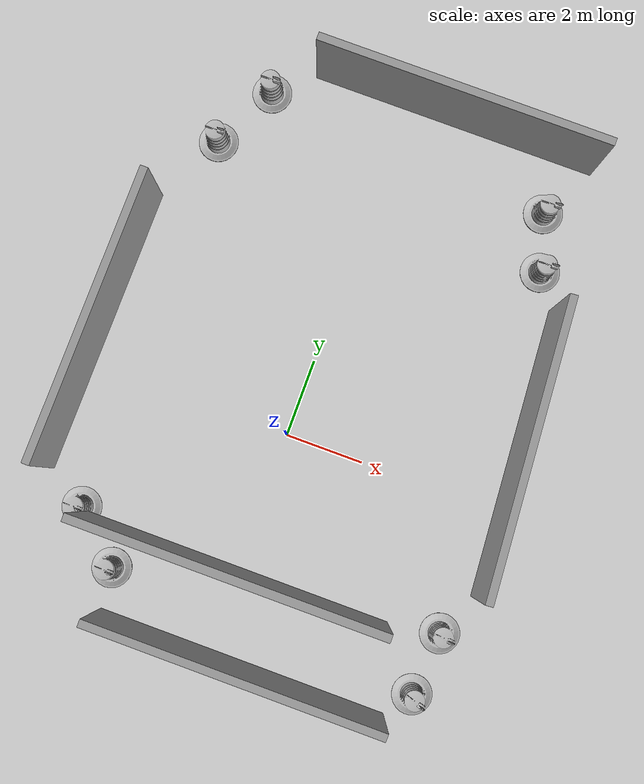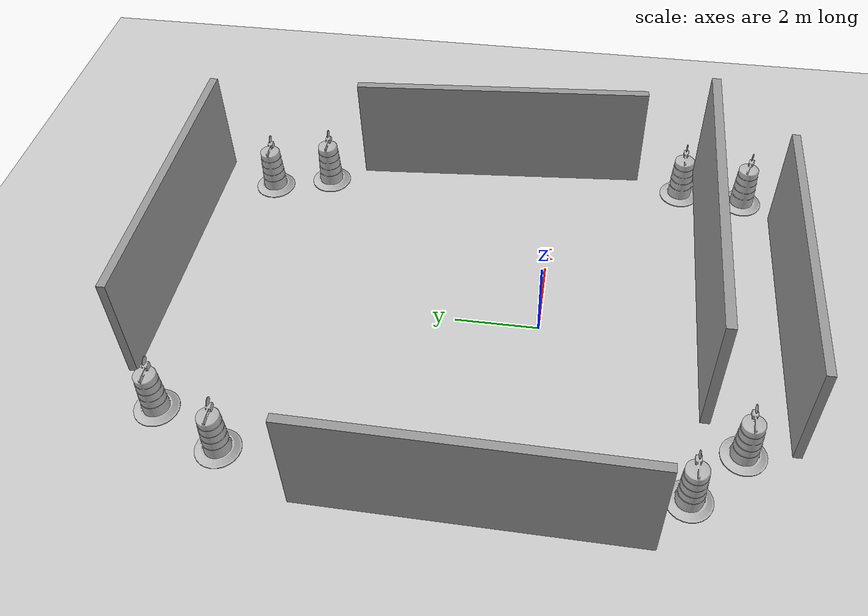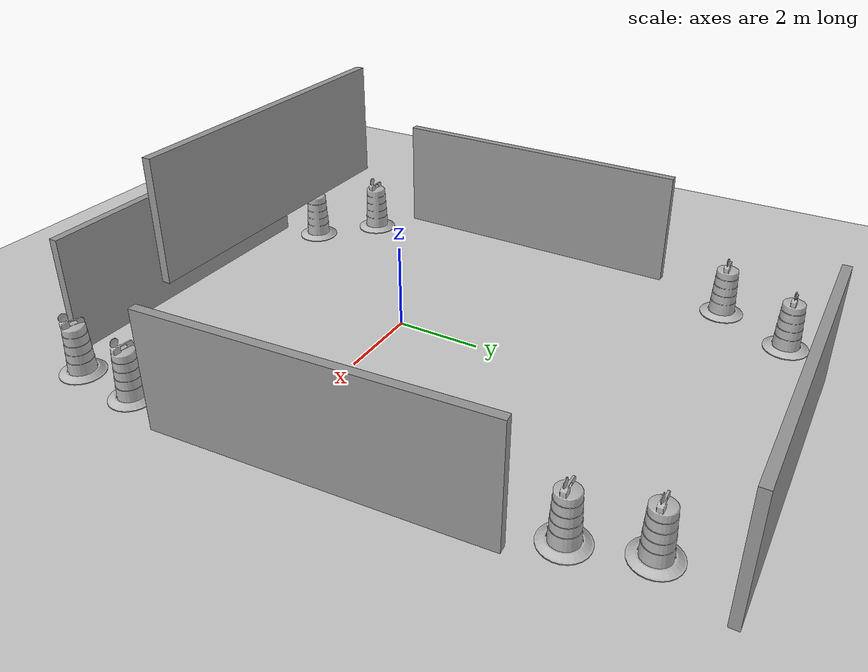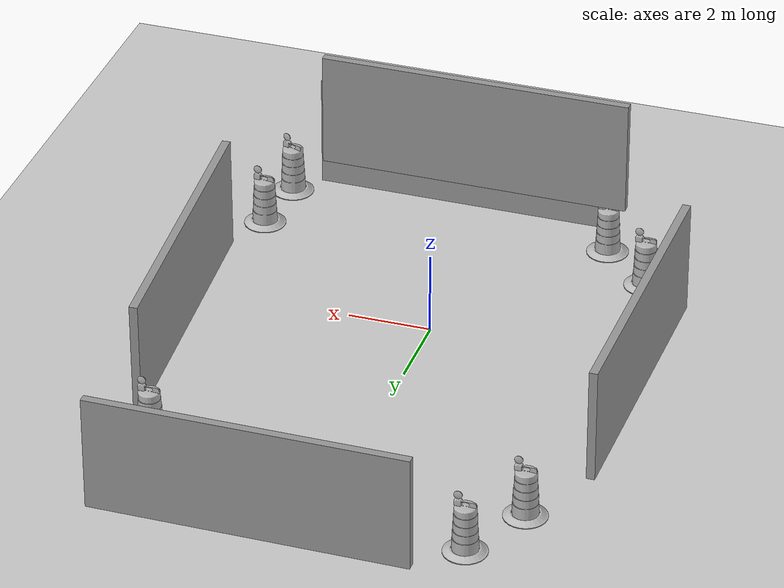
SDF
<sdf version="1.7">
 <world name="default">
  <light name="sun" type="directional">
   <pose>0 0 10 0 -0 0</pose>
   <diffuse>0.8 0.8 0.8 1</diffuse>
   <specular>0.2 0.2 0.2 1</specular>
   <attenuation>
    <range>1000</range>
    <constant>0.9</constant>
    <linear>0.01</linear>
    <quadratic>0.001</quadratic>
   </attenuation>
   <direction>-0.5 0.1 -0.9</direction>
   <spot><inner_angle>0</inner_angle><outer_angle>0</outer_angle><falloff>0</falloff></spot>
  </light>
  <model name="ground_plane">
   <static>1</static>
   <link name="link">
    <collision name="collision">
     <geometry><plane><normal>0 0 1</normal><size>100 100</size></plane></geometry>
     <surface><friction><ode><mu>100</mu><mu2>50</mu2></ode></friction></surface>
    </collision>
    <visual name="visual">
     <cast_shadows>0</cast_shadows>
     <geometry><plane><normal>0 0 1</normal><size>100 100</size></plane></geometry>
     <material>
      <script><uri>file://media/materials/scripts/gazebo.material</uri><name>Gazebo/Grey</name></script>
     </material>
    </visual>
   </link>
  </model>
  <gravity>0 0 -9.8</gravity>
  <magnetic_field>6e-06 2.3e-05 -4.2e-05</magnetic_field>
  <atmosphere type="adiabatic"/>
  <physics type="ode">
   <max_step_size>0.001</max_step_size>
   <real_time_factor>1</real_time_factor>
   <real_time_update_rate>1000</real_time_update_rate>
  </physics>
  <scene><ambient>0.4 0.4 0.4 1</ambient><background>0.7 0.7 0.7 1</background><shadows>1</shadows></scene>
  <audio><device>default</device></audio>
  <spherical_coordinates>
   <surface_model>EARTH_WGS84</surface_model>
   <latitude_deg>0</latitude_deg>
   <longitude_deg>0</longitude_deg>
   <elevation>0</elevation>
   <heading_deg>0</heading_deg>
  </spherical_coordinates>
  <model name="grey_wall">
   <static>1</static>
   <link name="link">
    <pose>0 0 1.4 0 -0 0</pose>
    <collision name="collision"><geometry><box><size>7.5 0.2 2.8</size></box></geometry></collision>
    <visual name="visual">
     <cast_shadows>0</cast_shadows>
     <geometry><box><size>7.5 0.2 2.8</size></box></geometry>
     <material>
      <script>
       <uri>model://grey_wall/materials/scripts</uri>
       <uri>model://grey_wall/materials/textures</uri>
       <name>vrc/grey_wall</name>
      </script>
     </material>
    </visual>
   </link>
   <pose>0.039687 -3.46876 2 0 -0 0</pose>
  </model>
  <model name="grey_wall_0">
   <static>1</static>
   <link name="link">
    <pose>0 0 1.4 0 -0 0</pose>
    <collision name="collision"><geometry><box><size>7.5 0.2 2.8</size></box></geometry></collision>
    <visual name="visual">
     <cast_shadows>0</cast_shadows>
     <geometry><box><size>7.5 0.2 2.8</size></box></geometry>
     <material>
      <script>
       <uri>model://grey_wall/materials/scripts</uri>
       <uri>model://grey_wall/materials/textures</uri>
       <name>vrc/grey_wall</name>
      </script>
     </material>
    </visual>
   </link>
   <pose>0.876801 -5.76507 0 0 -0 0</pose>
  </model>
  <model name="Construction Barrel">
   <link name="link">
    <inertial>
     <pose>0 0 0.4 0 -0 0</pose>
     <mass>500</mass>
     <inertia><ixx>51.2096</ixx><iyy>51.2096</iyy><izz>25</izz><ixy>0</ixy><ixz>0</ixz><iyz>0</iyz></inertia>
    </inertial>
    <collision name="collision">
     <geometry><mesh><uri>model://construction_barrel/meshes/construction_barrel.dae</uri></mesh></geometry>
    </collision>
    <visual name="visual">
     <geometry><mesh><uri>model://construction_barrel/meshes/construction_barrel.dae</uri></mesh></geometry>
    </visual>
   </link>
   <pose>5.14086 -4.98412 -0 0 0 -0.297538</pose>
  </model>
  <model name="Construction Barrel_0">
   <link name="link">
    <inertial>
     <pose>0 0 0.4 0 -0 0</pose>
     <mass>500</mass>
     <inertia><ixx>51.2096</ixx><iyy>51.2096</iyy><izz>25</izz><ixy>0</ixy><ixz>0</ixz><iyz>0</iyz></inertia>
    </inertial>
    <collision name="collision">
     <geometry><mesh><uri>model://construction_barrel/meshes/construction_barrel.dae</uri></mesh></geometry>
    </collision>
    <visual name="visual">
     <geometry><mesh><uri>model://construction_barrel/meshes/construction_barrel.dae</uri></mesh></geometry>
    </visual>
   </link>
   <pose>5.28592 -3.33833 -1e-06 4e-06 -2e-06 -0.071992</pose>
  </model>
  <model name="grey_wall_1">
   <static>1</static>
   <link name="link">
    <pose>0 0 1.4 0 -0 0</pose>
    <collision name="collision"><geometry><box><size>7.5 0.2 2.8</size></box></geometry></collision>
    <visual name="visual">
     <cast_shadows>0</cast_shadows>
     <geometry><box><size>7.5 0.2 2.8</size></box></geometry>
     <material>
      <script>
       <uri>model://grey_wall/materials/scripts</uri>
       <uri>model://grey_wall/materials/textures</uri>
       <name>vrc/grey_wall</name>
      </script>
     </material>
    </visual>
   </link>
   <pose>1.25 9.0622 0 0 -0 0</pose>
  </model>
  <model name="Construction Barrel_1">
   <link name="link">
    <inertial>
     <pose>0 0 0.4 0 -0 0</pose>
     <mass>500</mass>
     <inertia><ixx>51.2096</ixx><iyy>51.2096</iyy><izz>25</izz><ixy>0</ixy><ixz>0</ixz><iyz>0</iyz></inertia>
    </inertial>
    <collision name="collision">
     <geometry><mesh><uri>model://construction_barrel/meshes/construction_barrel.dae</uri></mesh></geometry>
    </collision>
    <visual name="visual">
     <geometry><mesh><uri>model://construction_barrel/meshes/construction_barrel.dae</uri></mesh></geometry>
    </visual>
   </link>
   <pose>4.197 7.584 -2e-06 -5e-06 -4e-06 -4e-05</pose>
  </model>
  <model name="Construction Barrel_2">
   <link name="link">
    <inertial>
     <pose>0 0 0.4 0 -0 0</pose>
     <mass>500</mass>
     <inertia><ixx>51.2096</ixx><iyy>51.2096</iyy><izz>25</izz><ixy>0</ixy><ixz>0</ixz><iyz>0</iyz></inertia>
    </inertial>
    <collision name="collision">
     <geometry><mesh><uri>model://construction_barrel/meshes/construction_barrel.dae</uri></mesh></geometry>
    </collision>
    <visual name="visual">
     <geometry><mesh><uri>model://construction_barrel/meshes/construction_barrel.dae</uri></mesh></geometry>
    </visual>
   </link>
   <pose>4.62341 6.12155 -1e-06 2e-06 -1e-06 -3.5e-05</pose>
  </model>
  <model name="grey_wall_2">
   <static>1</static>
   <link name="link">
    <pose>0 0 1.4 0 -0 0</pose>
    <collision name="collision"><geometry><box><size>7.5 0.2 2.8</size></box></geometry></collision>
    <visual name="visual">
     <cast_shadows>0</cast_shadows>
     <geometry><box><size>7.5 0.2 2.8</size></box></geometry>
     <material>
      <script>
       <uri>model://grey_wall/materials/scripts</uri>
       <uri>model://grey_wall/materials/textures</uri>
       <name>vrc/grey_wall</name>
      </script>
     </material>
    </visual>
   </link>
   <pose>5.53287 1.54211 0 0.002854 0.00672 1.64155</pose>
  </model>
  <model name="Construction Barrel_3">
   <link name="link">
    <inertial>
     <pose>0 0 0.4 0 -0 0</pose>
     <mass>500</mass>
     <inertia><ixx>51.2096</ixx><iyy>51.2096</iyy><izz>25</izz><ixy>0</ixy><ixz>0</ixz><iyz>0</iyz></inertia>
    </inertial>
    <collision name="collision">
     <geometry><mesh><uri>model://construction_barrel/meshes/construction_barrel.dae</uri></mesh></geometry>
    </collision>
    <visual name="visual">
     <geometry><mesh><uri>model://construction_barrel/meshes/construction_barrel.dae</uri></mesh></geometry>
    </visual>
   </link>
   <pose>-3.43042 8.15874 -0 0 0 -2.4e-05</pose>
  </model>
  <model name="Construction Barrel_4">
   <link name="link">
    <inertial>
     <pose>0 0 0.4 0 -0 0</pose>
     <mass>500</mass>
     <inertia><ixx>51.2096</ixx><iyy>51.2096</iyy><izz>25</izz><ixy>0</ixy><ixz>0</ixz><iyz>0</iyz></inertia>
    </inertial>
    <collision name="collision">
     <geometry><mesh><uri>model://construction_barrel/meshes/construction_barrel.dae</uri></mesh></geometry>
    </collision>
    <visual name="visual">
     <geometry><mesh><uri>model://construction_barrel/meshes/construction_barrel.dae</uri></mesh></geometry>
    </visual>
   </link>
   <pose>-4.28229 6.4813 -0 0 0 -2.2e-05</pose>
  </model>
  <model name="grey_wall_3">
   <static>1</static>
   <link name="link">
    <pose>0 0 1.4 0 -0 0</pose>
    <collision name="collision"><geometry><box><size>7.5 0.2 2.8</size></box></geometry></collision>
    <visual name="visual">
     <cast_shadows>0</cast_shadows>
     <geometry><box><size>7.5 0.2 2.8</size></box></geometry>
     <material>
      <script>
       <uri>model://grey_wall/materials/scripts</uri>
       <uri>model://grey_wall/materials/textures</uri>
       <name>vrc/grey_wall</name>
      </script>
     </material>
    </visual>
   </link>
   <pose>-5.28748 0.936112 0 0 -0 1.55856</pose>
  </model>
  <model name="Construction Barrel_5">
   <link name="link">
    <inertial>
     <pose>0 0 0.4 0 -0 0</pose>
     <mass>500</mass>
     <inertia><ixx>51.2096</ixx><iyy>51.2096</iyy><izz>25</izz><ixy>0</ixy><ixz>0</ixz><iyz>0</iyz></inertia>
    </inertial>
    <collision name="collision">
     <geometry><mesh><uri>model://construction_barrel/meshes/construction_barrel.dae</uri></mesh></geometry>
    </collision>
    <visual name="visual">
     <geometry><mesh><uri>model://construction_barrel/meshes/construction_barrel.dae</uri></mesh></geometry>
    </visual>
   </link>
   <pose>-2.97768 -4.63298 -1e-06 -8e-06 -2e-06 -1.1e-05</pose>
  </model>
  <model name="Construction Barrel_6">
   <link name="link">
    <inertial>
     <pose>0 0 0.4 0 -0 0</pose>
     <mass>500</mass>
     <inertia><ixx>51.2096</ixx><iyy>51.2096</iyy><izz>25</izz><ixy>0</ixy><ixz>0</ixz><iyz>0</iyz></inertia>
    </inertial>
    <collision name="collision">
     <geometry><mesh><uri>model://construction_barrel/meshes/construction_barrel.dae</uri></mesh></geometry>
    </collision>
    <visual name="visual">
     <geometry><mesh><uri>model://construction_barrel/meshes/construction_barrel.dae</uri></mesh></geometry>
    </visual>
   </link>
   <pose>-4.2315 -3.46713 -2e-06 -6e-06 -2e-06 -1.1e-05</pose>
  </model>
 </world>
</sdf>
